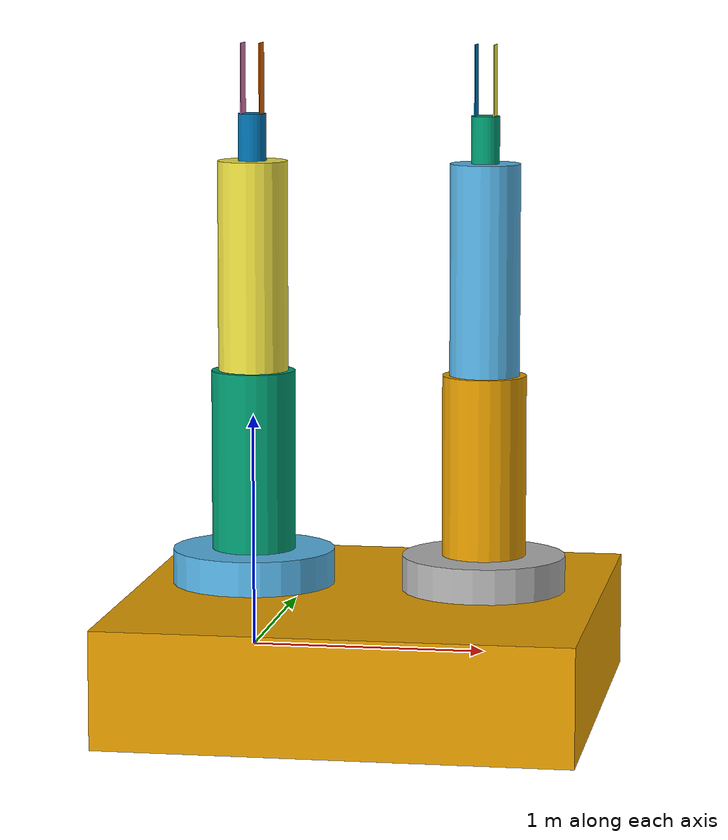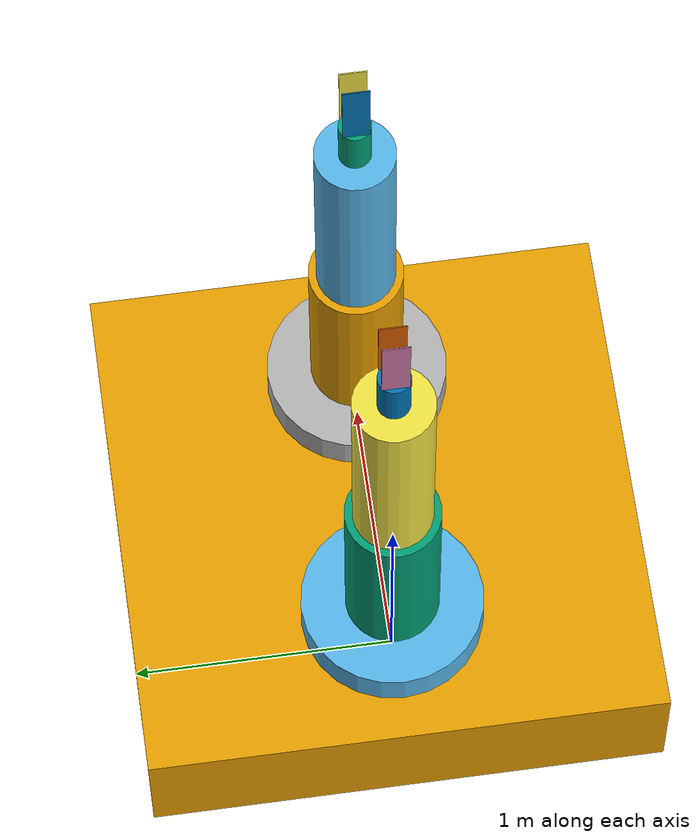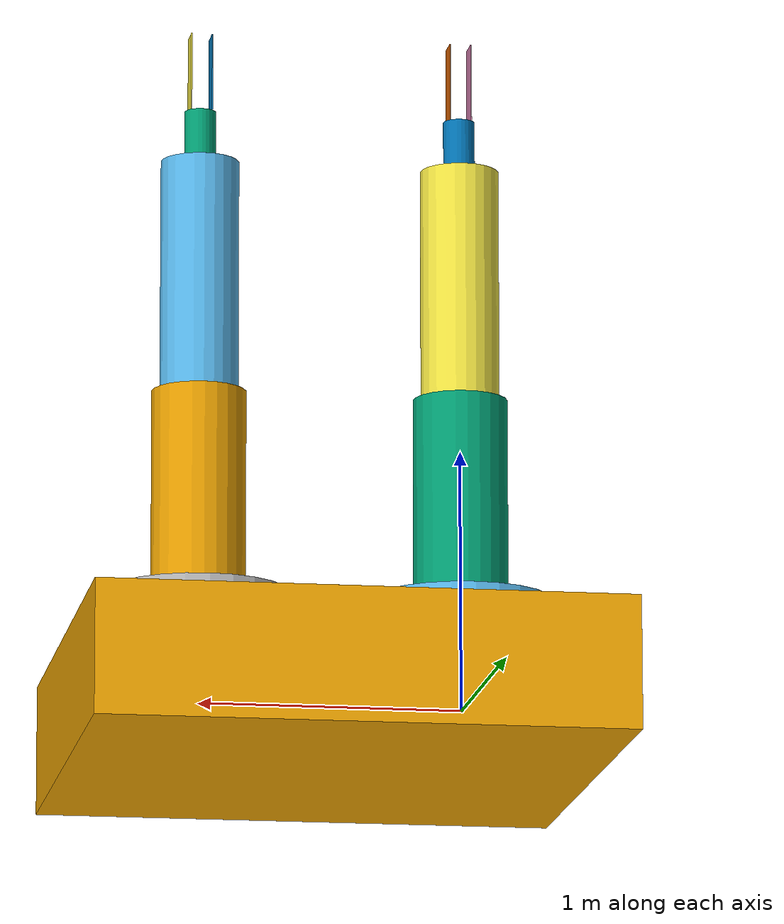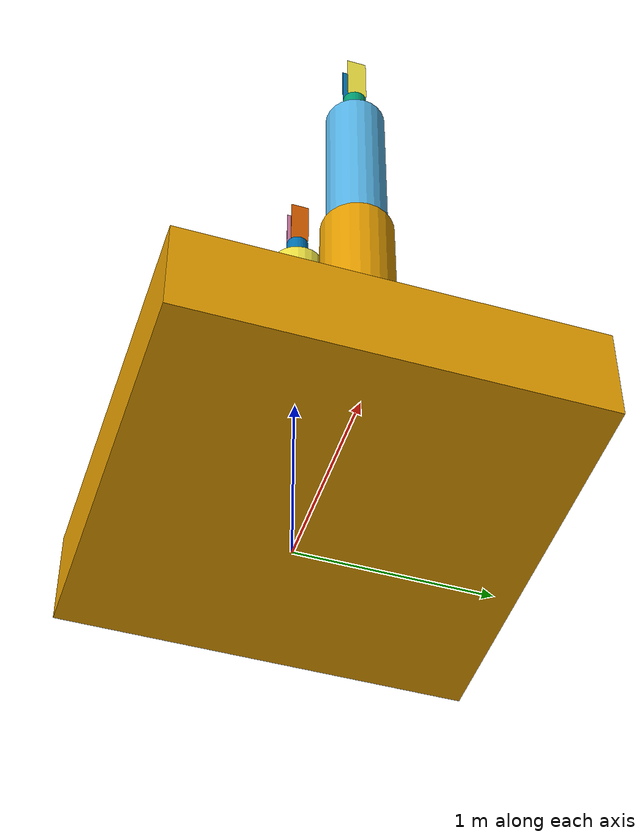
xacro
<?xml version="1.0" ?>

<robot name="mrm" xmlns:xacro="http://www.ros.org/wiki/xacro">
    <link name="base_link">
        <visual>
            <origin rpy="0 0 0" xyz="0.5 0 0"/>
            <geometry>
                <box size="2 2 0.5"/>
            </geometry>
        </visual>
        <collision>
            <geometry>
                <box size="2 2 0.5"/>
            </geometry>
        </collision>
        <inertial>
            <mass value="1000"/>
            <inertia ixx="354.2" ixy="0.0" ixz="0.0" iyy="354.2" iyz="0.0" izz="666.7"/>
        </inertial>
    </link>

    <joint name="base_link__link_01RIGHT" type="revolute">
        <axis xyz="0 0 1" />
        <limit effort="1000.0" lower="-3.14" upper="3.14" velocity="0.5" />
        <origin rpy="0 0 0" xyz="0 0 0.15"/>
        <parent link="base_link"/>
        <child link="link1RIGHT"/>
    </joint>

    <transmission name="trans_base_link__link_01RIGHT">
    <type>transmission_interface/SimpleTransmission</type>
    <joint name="base_link__link_01RIGHT">
        <hardwareInterface>hardware_interface/EffortJointInterface</hardwareInterface>
    </joint>
    <actuator name="motor_base_link__link_01RIGHT">
        <hardwareInterface>hardware_interface/EffortJointInterface</hardwareInterface>
        <mechanicalReduction>1</mechanicalReduction>
    </actuator>
  </transmission>

    <link name="link1RIGHT">
        <visual>
            <origin rpy="0 0 0" xyz="0 0 0.2"/>
            <geometry>
                <cylinder radius="0.35" length="0.15"/>
            </geometry>
        </visual>
        <collision>
            <geometry>
                <cylinder radius="0.35" length="0.15"/>
            </geometry>
        </collision>
        <inertial>
            <mass value="500"/>
            <inertia ixx="16.25" ixy="0.0" ixz="0.0" iyy="16.25" iyz="0.0" izz="30.625"/>
        </inertial>
    </link>

    <joint name="link_1RIGHT__link_2RIGHT" type="revolute">
        <axis xyz="0 1 0" />
        <limit effort="1000.0" lower="-3.14" upper="3.14" velocity="0.5" />
        <origin rpy="0 0 0" xyz="0 0 0.15"/>
        <parent link="link1RIGHT"/>
        <child link="link2RIGHT"/>
    </joint>

    <transmission name="trans_link_1RIGHT__link_2RIGHT">
    <type>transmission_interface/SimpleTransmission</type>
    <joint name="link_1RIGHT__link_2RIGHT">
        <hardwareInterface>hardware_interface/EffortJointInterface</hardwareInterface>
    </joint>
    <actuator name="motor_link_1RIGHT__link_2RIGHT">
        <hardwareInterface>hardware_interface/EffortJointInterface</hardwareInterface>
        <mechanicalReduction>1</mechanicalReduction>
    </actuator>
  </transmission>

    <link name="link2RIGHT">
        <visual>
            <origin rpy="0 0 0" xyz="0 0 0.5"/>
            <geometry>
                <cylinder radius="0.18" length="0.8"/>
            </geometry>
        </visual>
        <collision>
            <geometry>
                <cylinder radius="0.18" length="0.8"/>
            </geometry>
        </collision>
        <inertial>
            <mass value="300"/>
            <inertia ixx="18.43" ixy="0.0" ixz="0.0" iyy="18.43" iyz="0.0" izz="4.86"/>
        </inertial>
    </link>

    <joint name="link_2RIGHT__link_3RIGHT" type="revolute">
        <axis xyz="0 1 0" />
        <limit effort="1000.0" lower="-3.14" upper="3.14" velocity="0.5" />
        <origin rpy="0 0 0" xyz="0 0 0.8"/>
        <parent link="link2RIGHT"/>
        <child link="link3RIGHT"/>
    </joint>

    <transmission name="trans_link_2RIGHT__link_3RIGHT">
    <type>transmission_interface/SimpleTransmission</type>
    <joint name="link_2RIGHT__link_3RIGHT">
        <hardwareInterface>hardware_interface/EffortJointInterface</hardwareInterface>
    </joint>
    <actuator name="motor_link_2RIGHT__link_3RIGHT">
        <hardwareInterface>hardware_interface/EffortJointInterface</hardwareInterface>
        <mechanicalReduction>1</mechanicalReduction>
    </actuator>
  </transmission>

    <link name="link3RIGHT">
        <visual>
            <origin rpy="0 0 0" xyz="0 0 0.5"/>
            <geometry>
                <cylinder radius="0.15" length="1.0"/>
            </geometry>
        </visual>
        <collision>
            <geometry>
                <cylinder radius="0.15" length="1.0"/>
            </geometry>
        </collision>
        <inertial>
            <mass value="200"/>
            <inertia ixx="17.79" ixy="0.0" ixz="0.0" iyy="17.79" iyz="0.0" izz="2.25"/>
        </inertial>
    </link>

    <joint name="link_3RIGHT__link_5RIGHT" type="revolute">
        <axis xyz="0 1 0" />
        <limit effort="1000.0" lower="-3.14" upper="3.14" velocity="0.5" />
        <origin rpy="0 0 0" xyz="0 0 0.3"/>
        <parent link="link3RIGHT"/>
        <child link="link5_end_effectorRIGHT"/>
    </joint>

    <transmission name="trans_link_3RIGHT__link_5RIGHT">
    <type>transmission_interface/SimpleTransmission</type>
    <joint name="link_3RIGHT__link_5RIGHT">
        <hardwareInterface>hardware_interface/EffortJointInterface</hardwareInterface>
    </joint>
    <actuator name="motor_link_3RIGHT__link_5RIGHT">
        <hardwareInterface>hardware_interface/EffortJointInterface</hardwareInterface>
        <mechanicalReduction>1</mechanicalReduction>
    </actuator>
  </transmission>

    <link name="link5_end_effectorRIGHT">
        <visual>
            <origin rpy="0 0 0" xyz="0 0 0.5"/>
            <geometry>
                <cylinder radius="0.06" length="0.8"/>
            </geometry>
        </visual>
        <collision>
            <geometry>
                <cylinder radius="0.06" length="0.8"/>
            </geometry>
        </collision>
        <inertial>
            <mass value="100"/>
            <inertia ixx="5.423" ixy="0.0" ixz="0.0" iyy="5.423" iyz="0.0" izz="0.18"/>
        </inertial>
    </link>

    <joint name="GRIPPER_1_RIGHT" type="revolute">
        <axis xyz="0 1 0" />
        <limit effort="1000.0" lower="-3.14" upper="3.14" velocity="0.5" />
        <origin rpy="0 0 0" xyz="0 0 0.9"/>
        <parent link="link5_end_effectorRIGHT"/>
        <child link="GRIPPER1RIGHT"/>
    </joint>

    <transmission name="trans_GRIPPER_1_RIGHT">
    <type>transmission_interface/SimpleTransmission</type>
    <joint name="GRIPPER_1_RIGHT">
        <hardwareInterface>hardware_interface/EffortJointInterface</hardwareInterface>
    </joint>
    <actuator name="motor_GRIPPER_1_RIGHT">
        <hardwareInterface>hardware_interface/EffortJointInterface</hardwareInterface>
        <mechanicalReduction>1</mechanicalReduction>
    </actuator>
  </transmission>

    <link name="GRIPPER1RIGHT">
        <visual>
            <origin rpy="0 0 0" xyz="0.04 0 0.15"/>
            <geometry>
                <box size="0.004 0.1 0.3"/>
            </geometry>
        </visual>
        <collision>
            <geometry>
                <box size="0.004 0.1 0.3"/>
            </geometry>
        </collision>
        <inertial>
            <mass value="10"/>
            <inertia ixx="0.08333" ixy="0.0" ixz="0.0" iyy="0.07501" iyz="0.0" izz="0.015024"/>
        </inertial>
    </link>

    <joint name="GRIPPER_2_RIGHT" type="revolute">
        <axis xyz="0 1 0" />
        <limit effort="1000.0" lower="-3.14" upper="3.14" velocity="0.5" />
        <origin rpy="0 0 0" xyz="0 0 0.9"/>
        <parent link="link5_end_effectorRIGHT"/>
        <child link="GRIPPER2RIGHT"/>
    </joint>

    <transmission name="trans_GRIPPER_2_RIGHT">
    <type>transmission_interface/SimpleTransmission</type>
    <joint name="GRIPPER_2_RIGHT">
        <hardwareInterface>hardware_interface/EffortJointInterface</hardwareInterface>
    </joint>
    <actuator name="motor_GRIPPER_2_RIGHT">
        <hardwareInterface>hardware_interface/EffortJointInterface</hardwareInterface>
        <mechanicalReduction>1</mechanicalReduction>
    </actuator>
  </transmission>

    <link name="GRIPPER2RIGHT">
        <visual>
            <origin rpy="0 0 0" xyz="-0.04 0 0.15"/>
            <geometry>
                <box size="0.004 0.1 0.3"/>
            </geometry>
        </visual>
        <collision>
            <geometry>
                <box size="0.004 0.1 0.3"/>
            </geometry>
        </collision>
        <inertial>
            <mass value="10"/>
            <inertia ixx="0.08333" ixy="0.0" ixz="0.0" iyy="0.07501" iyz="0.0" izz="0.015024"/>
        </inertial>
    </link>

    <gazebo>
        <plugin name="gazebo_ros_control" filename="libgazebo_ros_control.so">
        </plugin>
    </gazebo>

    <joint name="base_link__link_01LEFT" type="revolute">
        <axis xyz="0 0 1" />
        <limit effort="1000.0" lower="-3.14" upper="3.14" velocity="0.5" />
        <origin rpy="0 0 0" xyz="1 0 0.15"/>
        <parent link="base_link"/>
        <child link="link1LEFT"/>
    </joint>

    <transmission name="trans_base_link__link_01LEFT">
    <type>transmission_interface/SimpleTransmission</type>
    <joint name="base_link__link_01LEFT">
        <hardwareInterface>hardware_interface/EffortJointInterface</hardwareInterface>
    </joint>
    <actuator name="motor_base_link__link_01LEFT">
        <hardwareInterface>hardware_interface/EffortJointInterface</hardwareInterface>
        <mechanicalReduction>1</mechanicalReduction>
    </actuator>
  </transmission>

    <link name="link1LEFT">
        <visual>
            <origin rpy="0 0 0" xyz="0 0 0.2"/>
            <geometry>
                <cylinder radius="0.35" length="0.15"/>
            </geometry>
        </visual>
        <collision>
            <geometry>
                <cylinder radius="0.35" length="0.15"/>
            </geometry>
        </collision>
        <inertial>
            <mass value="500"/>
            <inertia ixx="16.25" ixy="0.0" ixz="0.0" iyy="16.25" iyz="0.0" izz="30.625"/>
        </inertial>
    </link>

    <joint name="link_1LEFT__link_2LEFT" type="revolute">
        <axis xyz="0 1 0" />
        <limit effort="1000.0" lower="-3.14" upper="3.14" velocity="0.5" />
        <origin rpy="0 0 0" xyz="0 0 0.15"/>
        <parent link="link1LEFT"/>
        <child link="link2LEFT"/>
    </joint>

    <transmission name="trans_link_1LEFT__link_2LEFT">
    <type>transmission_interface/SimpleTransmission</type>
    <joint name="link_1LEFT__link_2LEFT">
        <hardwareInterface>hardware_interface/EffortJointInterface</hardwareInterface>
    </joint>
    <actuator name="motor_link_1LEFT__link_2LEFT">
        <hardwareInterface>hardware_interface/EffortJointInterface</hardwareInterface>
        <mechanicalReduction>1</mechanicalReduction>
    </actuator>
  </transmission>

    <link name="link2LEFT">
        <visual>
            <origin rpy="0 0 0" xyz="0 0 0.5"/>
            <geometry>
                <cylinder radius="0.18" length="0.8"/>
            </geometry>
        </visual>
        <collision>
            <geometry>
                <cylinder radius="0.18" length="0.8"/>
            </geometry>
        </collision>
        <inertial>
            <mass value="300"/>
            <inertia ixx="18.43" ixy="0.0" ixz="0.0" iyy="18.43" iyz="0.0" izz="4.86"/>
        </inertial>
    </link>

    <joint name="link_2LEFT__link_3LEFT" type="revolute">
        <axis xyz="0 1 0" />
        <limit effort="1000.0" lower="-3.14" upper="3.14" velocity="0.5" />
        <origin rpy="0 0 0" xyz="0 0 0.8"/>
        <parent link="link2LEFT"/>
        <child link="link3LEFT"/>
    </joint>

    <transmission name="trans_link_2LEFT__link_3LEFT">
    <type>transmission_interface/SimpleTransmission</type>
    <joint name="link_2LEFT__link_3LEFT">
        <hardwareInterface>hardware_interface/EffortJointInterface</hardwareInterface>
    </joint>
    <actuator name="motor_link_2LEFT__link_3LEFT">
        <hardwareInterface>hardware_interface/EffortJointInterface</hardwareInterface>
        <mechanicalReduction>1</mechanicalReduction>
    </actuator>
  </transmission>

    <link name="link3LEFT">
        <visual>
            <origin rpy="0 0 0" xyz="0 0 0.5"/>
            <geometry>
                <cylinder radius="0.15" length="1.0"/>
            </geometry>
        </visual>
        <collision>
            <geometry>
                <cylinder radius="0.15" length="1.0"/>
            </geometry>
        </collision>
        <inertial>
            <mass value="200"/>
            <inertia ixx="17.79" ixy="0.0" ixz="0.0" iyy="17.79" iyz="0.0" izz="2.25"/>
        </inertial>
    </link>

    <joint name="link_3LEFT__link_5LEFT" type="revolute">
        <axis xyz="0 1 0" />
        <limit effort="1000.0" lower="-3.14" upper="3.14" velocity="0.5" />
        <origin rpy="0 0 0" xyz="0 0 0.3"/>
        <parent link="link3LEFT"/>
        <child link="link5_end_effectorLEFT"/>
    </joint>

    <transmission name="trans_link_3LEFT__link_5LEFT">
    <type>transmission_interface/SimpleTransmission</type>
    <joint name="link_3LEFT__link_5LEFT">
        <hardwareInterface>hardware_interface/EffortJointInterface</hardwareInterface>
    </joint>
    <actuator name="motor_link_3LEFT__link_5LEFT">
        <hardwareInterface>hardware_interface/EffortJointInterface</hardwareInterface>
        <mechanicalReduction>1</mechanicalReduction>
    </actuator>
  </transmission>

    <link name="link5_end_effectorLEFT">
        <visual>
            <origin rpy="0 0 0" xyz="0 0 0.5"/>
            <geometry>
                <cylinder radius="0.06" length="0.8"/>
            </geometry>
        </visual>
        <collision>
            <geometry>
                <cylinder radius="0.06" length="0.8"/>
            </geometry>
        </collision>
        <inertial>
            <mass value="100"/>
            <inertia ixx="5.423" ixy="0.0" ixz="0.0" iyy="5.423" iyz="0.0" izz="0.18"/>
        </inertial>
    </link>

    <joint name="GRIPPER_1_LEFT" type="revolute">
        <axis xyz="0 1 0" />
        <limit effort="1000.0" lower="-3.14" upper="3.14" velocity="0.5" />
        <origin rpy="0 0 0" xyz="0 0 0.9"/>
        <parent link="link5_end_effectorLEFT"/>
        <child link="GRIPPER1LEFT"/>
    </joint>

    <transmission name="trans_GRIPPER_1_LEFT">
    <type>transmission_interface/SimpleTransmission</type>
    <joint name="GRIPPER_1_LEFT">
        <hardwareInterface>hardware_interface/EffortJointInterface</hardwareInterface>
    </joint>
    <actuator name="motor_GRIPPER_1_LEFT">
        <hardwareInterface>hardware_interface/EffortJointInterface</hardwareInterface>
        <mechanicalReduction>1</mechanicalReduction>
    </actuator>
  </transmission>

    <link name="GRIPPER1LEFT">
        <visual>
            <origin rpy="0 0 0" xyz="0.04 0 0.15"/>
            <geometry>
                <box size="0.004 0.1 0.3"/>
            </geometry>
        </visual>
        <collision>
            <geometry>
                <box size="0.004 0.1 0.3"/>
            </geometry>
        </collision>
        <inertial>
            <mass value="10"/>
            <inertia ixx="0.08333" ixy="0.0" ixz="0.0" iyy="0.07501" iyz="0.0" izz="0.015024"/>
        </inertial>
    </link>

    <joint name="GRIPPER_2_LEFT" type="revolute">
        <axis xyz="0 1 0" />
        <limit effort="1000.0" lower="-3.14" upper="3.14" velocity="0.5" />
        <origin rpy="0 0 0" xyz="0 0 0.9"/>
        <parent link="link5_end_effectorLEFT"/>
        <child link="GRIPPER2LEFT"/>
    </joint>

    <transmission name="trans_GRIPPER_2_LEFT">
    <type>transmission_interface/SimpleTransmission</type>
    <joint name="GRIPPER_2_LEFT">
        <hardwareInterface>hardware_interface/EffortJointInterface</hardwareInterface>
    </joint>
    <actuator name="motor_GRIPPER_2_LEFT">
        <hardwareInterface>hardware_interface/EffortJointInterface</hardwareInterface>
        <mechanicalReduction>1</mechanicalReduction>
    </actuator>
  </transmission>

    <link name="GRIPPER2LEFT">
        <visual>
            <origin rpy="0 0 0" xyz="-0.04 0 0.15"/>
            <geometry>
                <box size="0.004 0.1 0.3"/>
            </geometry>
        </visual>
        <collision>
            <geometry>
                <box size="0.004 0.1 0.3"/>
            </geometry>
        </collision>
        <inertial>
            <mass value="10"/>
            <inertia ixx="0.08333" ixy="0.0" ixz="0.0" iyy="0.07501" iyz="0.0" izz="0.015024"/>
        </inertial>
    </link>

    <gazebo>
        <plugin name="gazebo_ros_control" filename="libgazebo_ros_control.so">
        </plugin>
    </gazebo>
</robot>
